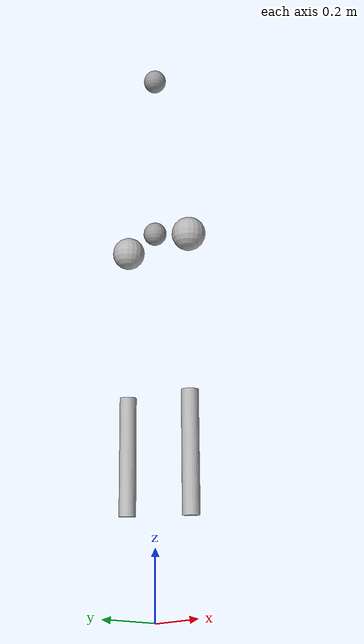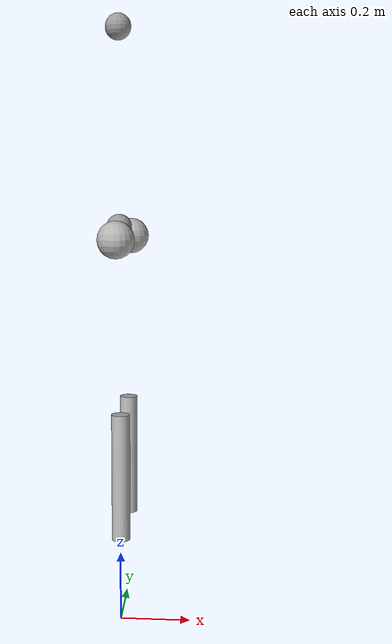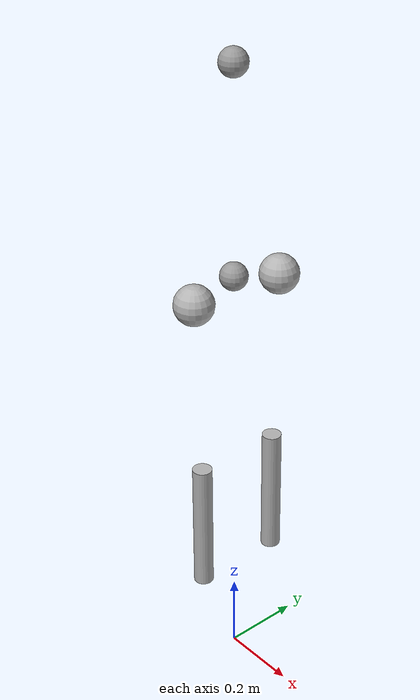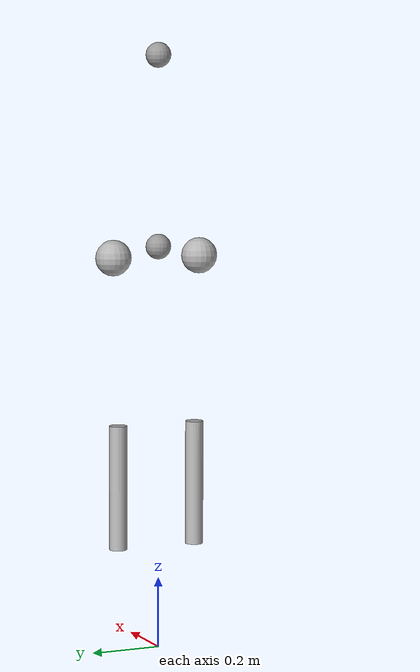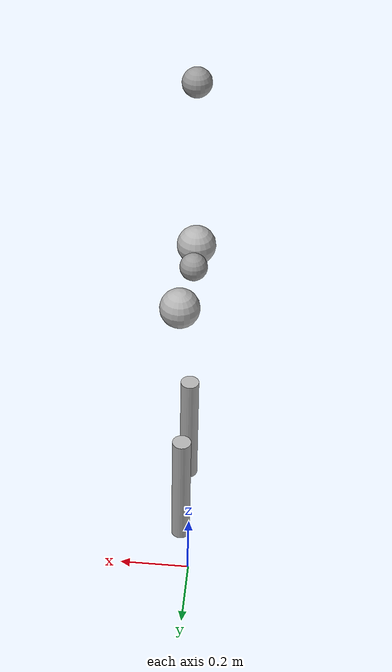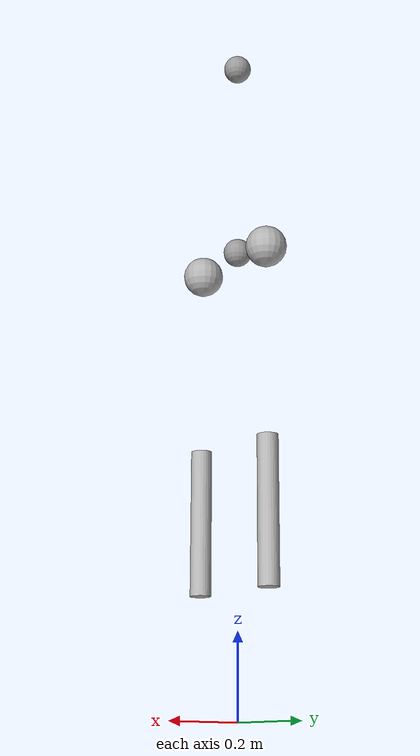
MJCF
<?xml version='1.0' encoding='utf-8'?>
<mujoco model="H2">
  <compiler angle="radian" />

  <statistic meansize="0.144785" extent="1.23314" center="0.025392 2.0634e-05 -0.245975" />
  <default>
    <joint damping="0.001" armature="0.01" frictionloss="0.1" />
  </default>
  <option timestep="0.002" />
  <worldbody>
    <body name="pelvis" pos="0.0 0.0 1.2 ">
      <inertial pos="0.00027091 -3.31e-05 -0.0145255" quat="0.707868 0.706283 -0.00931318 0.0010183" mass="8.5477" diaginertia="0.0352772 0.0272349 0.0226885" />
      <joint name="floating_base_joint" type="free" />
      <body name="hips_sphere" pos="0 0 -0.065407">
        <geom type="sphere" size="0.035" contype="0" conaffinity="0" group="1" density="0" rgba="0.6 0.6 0.6 1" />
      </body>
      <body name="left_hip_pitch_link" pos="0 0.08038 -0.046407" quat="0.965926 -0.25882 0 0">
        <inertial pos="0.00294368 0.061102 -0.017351" quat="0.89044 0.453883 -0.0133707 -0.0304704" mass="2.8737" diaginertia="0.00537408 0.00421163 0.0036878" />
        <joint name="left_hip_pitch_joint" pos="0 0 0" axis="0 1 0" range="-2.4526 2.77542" actuatorfrcrange="-360 360" />
        <body name="left_hip_roll_link" pos="0.041774 0.0635 -0.019" quat="0.965926 0.25882 0 0">
          <inertial pos="-0.0175789 -0.00607425 -0.041315" quat="-0.165515 0.598251 -0.0524355 0.782273" mass="0.785079" diaginertia="0.0023778 0.00200443 0.0015153" />
          <joint name="left_hip_roll_joint" pos="0 0 0" axis="1 0 0" range="-0.467441 2.16886" actuatorfrcrange="-360 360" />
          <geom size="0.05" pos="-0.02 0 0" rgba="0.7 0.7 0.7 1" />
          <body name="left_hip_yaw_link" pos="-0.028187 -0.0095 -0.0737">
            <inertial pos="0.00069408 -0.0108659 -0.113015" quat="0.621956 -0.0405938 0.0198649 0.781747" mass="7.0875" diaginertia="0.0514013 0.0505964 0.0130063" />
            <joint name="left_hip_yaw_joint" pos="0 0 0" axis="0 0 1" range="-2.827 2.827" actuatorfrcrange="-360 360" />
            <body name="left_knee_link" pos="-0.010308 0.022549 -0.31959">
              <inertial pos="0.00461331 -0.022549 -0.167155" quat="0.689662 0.00325283 0.00290593 0.724118" mass="4.3534" diaginertia="0.0512388 0.0510884 0.00333998" />
              <joint name="left_knee_joint" pos="0 0 0" axis="0 1 0" range="-0.08725 2.53025" actuatorfrcrange="-360 360" />
              <geom size="0.025 0.175" pos="0.01 -0.022549 -0.25" type="cylinder" rgba="0.7 0.7 0.7 1" />
              <body name="left_ankle_roll_link" pos="0.032719 -0.023002 -0.49662">
                <inertial pos="-0.0174063 6.424e-05 -0.0002146" quat="0.499157 0.502573 -0.497809 0.500449" mass="0.123182" diaginertia="4.00501e-05 3.43207e-05 1.44993e-05" />
                <joint name="left_ankle_roll_joint" pos="0 0 0" axis="1 0 0" range="-0.349066 0.296706" actuatorfrcrange="-19 19" />
                <body name="left_ankle_pitch_link" pos="-0.014516 -0.0373 0">
                  <inertial pos="0.032059 0.0370053 -0.0288282" quat="6.19452e-05 0.72345 -3.0004e-05 0.690377" mass="0.894967" diaginertia="0.00438317 0.00410964 0.000599978" />
                  <joint name="left_ankle_pitch_joint" pos="0 0 0" axis="0 1 0" range="-1.13446 0.610865" actuatorfrcrange="-66.88 66.88" />
                  <body name="left_foot_end_link" pos="-0.07 0.0373 -0.05">
                    <geom type="sphere" size="0.02" contype="0" conaffinity="0" group="1" density="0" rgba="1 0 0 0" />
                  </body>
                  <body name="left_toe_link" pos="0.15 0.0373 -0.05">
                    <geom type="sphere" size="0.02" contype="0" conaffinity="0" group="1" density="0" rgba="1 0 0 0" />
                  </body>
                </body>
              </body>
            </body>
          </body>
        </body>
      </body>
      <body name="right_hip_pitch_link" pos="0 -0.08038 -0.046407" quat="0.965926 0.25882 0 0">
        <inertial pos="0.00294368 -0.061102 -0.017351" quat="0.453883 0.89044 0.0304704 0.0133707" mass="2.8737" diaginertia="0.00537408 0.00421163 0.0036878" />
        <joint name="right_hip_pitch_joint" pos="0 0 0" axis="0 1 0" range="-2.4526 2.77542" actuatorfrcrange="-360 360" />
        <body name="right_hip_roll_link" pos="0.041774 -0.0635 -0.019" quat="0.965926 -0.25882 0 0">
          <inertial pos="-0.0175789 0.00607425 -0.041315" quat="0.165515 0.598251 0.0524355 0.782273" mass="0.75122" diaginertia="0.0023778 0.00200443 0.0015153" />
          <joint name="right_hip_roll_joint" pos="0 0 0" axis="1 0 0" range="-2.16886 0.467441" actuatorfrcrange="-360 360" />
          <geom size="0.05" pos="-0.038 0 0" rgba="0.7 0.7 0.7 1" />
          <body name="right_hip_yaw_link" pos="-0.028187 0.0095 -0.0737">
            <inertial pos="0.00069408 0.0108659 -0.113015" quat="0.781747 0.0198649 -0.0405938 0.621956" mass="7.0875" diaginertia="0.0514013 0.0505964 0.0130063" />
            <joint name="right_hip_yaw_joint" pos="0 0 0" axis="0 0 1" range="-2.827 2.827" actuatorfrcrange="-360 360" />
            <body name="right_knee_link" pos="-0.010308 -0.022549 -0.31959">
              <inertial pos="0.00461331 0.022549 -0.167155" quat="0.724118 0.00290593 0.00325283 0.689662" mass="4.3534" diaginertia="0.0512388 0.0510884 0.00333998" />
              <joint name="right_knee_joint" pos="0 0 0" axis="0 1 0" range="-0.08725 2.53025" actuatorfrcrange="-360 360" />
              <geom size="0.025 0.175" pos="0.01 0.022549 -0.25" type="cylinder" rgba="0.7 0.7 0.7 1" />
              <body name="right_ankle_roll_link" pos="0.032719 0.023002 -0.49662">
                <inertial pos="-0.0174063 -6.424e-05 -0.0002146" quat="0.502573 0.499157 -0.500449 0.497809" mass="0.123182" diaginertia="4.00501e-05 3.43207e-05 1.44993e-05" />
                <joint name="right_ankle_roll_joint" pos="0 0 0" axis="1 0 0" range="-0.296706 0.349066" actuatorfrcrange="-19 19" />
                <body name="right_ankle_pitch_link" pos="-0.014516 0.0373 0">
                  <inertial pos="0.032059 -0.0370053 -0.0288282" quat="-6.19452e-05 0.72345 3.0004e-05 0.690377" mass="0.894967" diaginertia="0.00438317 0.00410964 0.000599978" />
                  <joint name="right_ankle_pitch_joint" pos="0 0 0" axis="0 1 0" range="-1.13446 0.610865" actuatorfrcrange="-66.88 66.88" />
                  <body name="right_foot_end_link" pos="-0.07 -0.0373 -0.05">
                    <geom type="sphere" size="0.02" contype="0" conaffinity="0" group="1" density="0" rgba="1 0 0 0" />
                  </body>
                  <body name="right_toe_link" pos="0.15 -0.0373 -0.05">
                    <geom type="sphere" size="0.02" contype="0" conaffinity="0" group="1" density="0" rgba="1 0 0 0" />
                  </body>
                </body>
              </body>
            </body>
          </body>
        </body>
      </body>
      <body name="waist_yaw_link" pos="0 0 0.090537">
        <inertial pos="0.00648295 1.018e-05 0.0176063" quat="0.000115436 0.720073 0.000256241 0.693898" mass="0.312936" diaginertia="0.00033891 0.00028436 0.00012018" />
        <joint name="waist_yaw_joint" pos="0 0 0" axis="0 0 1" range="-1.7453 1.7453" actuatorfrcrange="-120 120" />
        <body name="waist_roll_link" pos="0 0 0.0325">
          <inertial pos="0 0.00061119 0" quat="0.5 0.5 -0.5 0.5" mass="0.138419" diaginertia="2.304e-05 1.668e-05 1.509e-05" />
          <joint name="waist_roll_joint" pos="0 0 0" axis="1 0 0" range="-0.5236 0.5236" actuatorfrcrange="-180 180" />
          <body name="torso_link">
            <inertial pos="0.00740421 0.00628045 0.215575" quat="0.99932 -0.0321662 -0.00775231 0.0162839" mass="18.532" diaginertia="0.287321 0.26278 0.0934525" />
            <joint name="waist_pitch_joint" pos="0 0 0" axis="0 1 0" range="-0.43633 0.5236" actuatorfrcrange="-180 180" />
            <body name="neck_sphere" pos="-0.0001147 0.0 0.340">
              <geom type="sphere" size="0.035" contype="0" conaffinity="0" group="1" density="0" rgba="0.6 0.6 0.6 1" />
            </body>
            <body name="head_pitch_link" pos="-0.0001147 -0.0189 0.4218">
              <inertial pos="0.000126 0.018817 0.052939" quat="0.999996 -0.000955249 -0.00262397 -0.000580497" mass="1.82" diaginertia="0.00538697 0.00532442 0.00140982" />
              <joint name="head_pitch_joint" pos="0 0 0" axis="0 1 0" range="-0.5236 0.83775" actuatorfrcrange="-50 50" />
              <body name="head_yaw_link" pos="0 0.0189 0.1335">
                <inertial pos="0.023654 -0.000734 0.042315" quat="0.667311 -0.227767 -0.231751 0.670156" mass="1.3" diaginertia="0.00535274 0.00472336 0.00378091" />
                <joint name="head_yaw_joint" pos="0 0 0" axis="0 0 1" range="-1.7453 1.7453" actuatorfrcrange="-50 50" />
                </body>
            </body>
            <body name="left_shoulder_pitch_link" pos="0.0030848 0.11 0.36008" quat="0.990959 0.134164 0 0">
              <inertial pos="-0.0027817 0.050393 -0.023914" quat="0.959427 0.279803 0.00644957 0.0341716" mass="1.1927" diaginertia="0.00174925 0.00162902 0.000852428" />
              <joint name="left_shoulder_pitch_joint" pos="0 0 0" axis="0 1 0" range="-2.618 1.833" actuatorfrcrange="-130 130" />
              <body name="left_shoulder_roll_link" pos="-0.0032074 0.059938 -0.039865" quat="0.990959 -0.134164 0 0">
                <inertial pos="-0.00126759 0.00399799 -0.0665267" quat="0.719226 0.0130341 -0.00543937 0.694633" mass="1.10983" diaginertia="0.00193836 0.00176489 0.00106378" />
                <joint name="left_shoulder_roll_joint" pos="0 0 0" axis="1 0 0" range="-0.517 2.494" actuatorfrcrange="-60 60" />
                <body name="left_shoulder_yaw_link" pos="-0.0025601 0.0036752 -0.10421">
                  <inertial pos="0.00265957 0.0123454 -0.059622" quat="0.655577 0.0514587 -0.154929 0.737271" mass="0.352739" diaginertia="0.000897689 0.000854204 0.000287447" />
                  <joint name="left_shoulder_yaw_joint" pos="0 0 0" axis="0 0 1" range="-2.618 2.618" actuatorfrcrange="-60 60" />
                  <body name="left_elbow_link" pos="0.016655 0.02211 -0.12792">
                    <inertial pos="0.0506767 -0.0216173 -0.00672238" quat="0.162352 0.731329 0.192833 0.633732" mass="1.70612" diaginertia="0.00522743 0.00521428 0.00111897" />
                    <joint name="left_elbow_joint" pos="0 0 0" axis="0 1 0" range="-0.986 3.071" actuatorfrcrange="-60 60" />
                    <body name="left_wrist_roll_link" pos="0.13119 -0.021497 -0.013769">
                      <inertial pos="0.035915 -0.00154506 0.00012879" quat="0.349429 0.616315 -0.3656 0.603649" mass="0.77426" diaginertia="0.000715547 0.000661189 0.000632495" />
                      <joint name="left_wrist_roll_joint" pos="0 0 0" axis="1 0 0" range="-2.618 2.618" actuatorfrcrange="-60 60" />
                      <body name="left_wrist_pitch_link" pos="0.037994 0.031144 0.00045104">
                        <inertial pos="0.0651093 -0.0317607 0.00235463" quat="0.491682 0.228754 0.718653 0.435268" mass="0.615258" diaginertia="0.000423535 0.000417983 0.000396162" />
                        <joint name="left_wrist_pitch_joint" pos="0 0 0" axis="0 1 0" range="-0.576 0.576" actuatorfrcrange="-10 10" />
                        <body name="left_wrist_yaw_link" pos="0.069283 -0.031045 -0.0006247">
                          <inertial pos="0.0479324 0.0322472 0.0143745" quat="-0.313045 0.629844 -0.0838475 0.705882" mass="0.616082" diaginertia="0.00131865 0.00121052 0.000840808" />
                          <joint name="left_wrist_yaw_joint" pos="0 0 0" axis="0 0 1" range="-1.22 1.22" actuatorfrcrange="-10 10" />
                          </body>
                      </body>
                    </body>
                  </body>
                </body>
              </body>
            </body>
            <body name="right_shoulder_pitch_link" pos="0.0030848 -0.11 0.36008" quat="0.990959 -0.134164 0 0">
              <inertial pos="-0.0027814 -0.050393 -0.023914" quat="0.959425 -0.279804 0.00643587 -0.0342398" mass="1.1927" diaginertia="0.00174925 0.00162902 0.000852428" />
              <joint name="right_shoulder_pitch_joint" pos="0 0 0" axis="0 1 0" range="-2.618 1.833" actuatorfrcrange="-130 130" />
              <body name="right_shoulder_roll_link" pos="-0.0032074 -0.059938 -0.039865" quat="0.990959 0.134164 0 0">
                <inertial pos="-0.00126782 -0.0039981 -0.0665261" quat="0.694607 -0.0054503 0.0130148 0.719251" mass="1.10982" diaginertia="0.00193838 0.00176496 0.00106379" />
                <joint name="right_shoulder_roll_joint" pos="0 0 0" axis="1 0 0" range="-2.494 0.517" actuatorfrcrange="-60 60" />
                <body name="right_shoulder_yaw_link" pos="-0.0025601 -0.0036752 -0.10421">
                  <inertial pos="0.00266059 -0.0123451 -0.0596234" quat="0.737262 -0.154921 0.0514524 0.65559" mass="0.352742" diaginertia="0.000897692 0.000854184 0.000287444" />
                  <joint name="right_shoulder_yaw_joint" pos="0 0 0" axis="0 0 1" range="-2.618 2.618" actuatorfrcrange="-60 60" />
                  <body name="right_elbow_link" pos="0.016655 -0.02211 -0.12792">
                    <inertial pos="0.0506784 0.0216171 -0.00672338" quat="-0.1624 0.731318 -0.192894 0.633713" mass="1.70617" diaginertia="0.00522767 0.0052145 0.00111905" />
                    <joint name="right_elbow_joint" pos="0 0 0" axis="0 1 0" range="-0.986 3.071" actuatorfrcrange="-60 60" />
                    <body name="right_wrist_roll_link" pos="0.13119 0.021497 -0.013769">
                      <inertial pos="0.0359137 0.00155865 0.00014187" quat="0.61587 0.348982 -0.602387 0.368844" mass="0.774265" diaginertia="0.00071595 0.000661595 0.000632525" />
                      <joint name="right_wrist_roll_joint" pos="0 0 0" axis="1 0 0" range="-2.618 2.618" actuatorfrcrange="-60 60" />
                      <body name="right_wrist_pitch_link" pos="0.037994 -0.031144 0.00045104">
                        <inertial pos="0.0651131 0.0317523 0.00231986" quat="0.440426 0.716762 0.242507 0.483185" mass="0.615837" diaginertia="0.000424256 0.000418373 0.000396861" />
                        <joint name="right_wrist_pitch_joint" pos="0 0 0" axis="0 1 0" range="-0.576 0.576" actuatorfrcrange="-10 10" />
                        <body name="right_wrist_yaw_link" pos="0.069283 0.031045 -0.0006247">
                          <inertial pos="0.0337013 0.0421432 -0.0074833" quat="-0.16511 0.651316 0.385961 0.632108" mass="0.616082" diaginertia="0.00139743 0.00124795 0.000903596" />
                          <joint name="right_wrist_yaw_joint" pos="0 0 0" axis="0 0 1" range="-1.22 1.22" actuatorfrcrange="-10 10" />
                          </body>
                      </body>
                    </body>
                  </body>
                </body>
              </body>
            </body>
          </body>
        </body>
      </body>
    </body>
  </worldbody>

  <actuator>
    <motor name="left_hip_pitch_joint" joint="left_hip_pitch_joint" />
    <motor name="left_hip_roll_joint" joint="left_hip_roll_joint" />
    <motor name="left_hip_yaw_joint" joint="left_hip_yaw_joint" />
    <motor name="left_knee_joint" joint="left_knee_joint" />
    <motor name="left_ankle_roll_joint" joint="left_ankle_roll_joint" />
    <motor name="left_ankle_pitch_joint" joint="left_ankle_pitch_joint" />
    <motor name="right_hip_pitch_joint" joint="right_hip_pitch_joint" />
    <motor name="right_hip_roll_joint" joint="right_hip_roll_joint" />
    <motor name="right_hip_yaw_joint" joint="right_hip_yaw_joint" />
    <motor name="right_knee_joint" joint="right_knee_joint" />
    <motor name="right_ankle_roll_joint" joint="right_ankle_roll_joint" />
    <motor name="right_ankle_pitch_joint" joint="right_ankle_pitch_joint" />
    <motor name="waist_yaw_joint" joint="waist_yaw_joint" />
    <motor name="waist_roll_joint" joint="waist_roll_joint" />
    <motor name="waist_pitch_joint" joint="waist_pitch_joint" />
    <motor name="head_pitch_joint" joint="head_pitch_joint" />
    <motor name="head_yaw_joint" joint="head_yaw_joint" />
    <motor name="left_shoulder_pitch_joint" joint="left_shoulder_pitch_joint" />
    <motor name="left_shoulder_roll_joint" joint="left_shoulder_roll_joint" />
    <motor name="left_shoulder_yaw_joint" joint="left_shoulder_yaw_joint" />
    <motor name="left_elbow_joint" joint="left_elbow_joint" />
    <motor name="left_wrist_roll_joint" joint="left_wrist_roll_joint" />
    <motor name="left_wrist_pitch_joint" joint="left_wrist_pitch_joint" />
    <motor name="left_wrist_yaw_joint" joint="left_wrist_yaw_joint" />
    <motor name="right_shoulder_pitch_joint" joint="right_shoulder_pitch_joint" />
    <motor name="right_shoulder_roll_joint" joint="right_shoulder_roll_joint" />
    <motor name="right_shoulder_yaw_joint" joint="right_shoulder_yaw_joint" />
    <motor name="right_elbow_joint" joint="right_elbow_joint" />
    <motor name="right_wrist_roll_joint" joint="right_wrist_roll_joint" />
    <motor name="right_wrist_pitch_joint" joint="right_wrist_pitch_joint" />
    <motor name="right_wrist_yaw_joint" joint="right_wrist_yaw_joint" />
  </actuator>

</mujoco>
